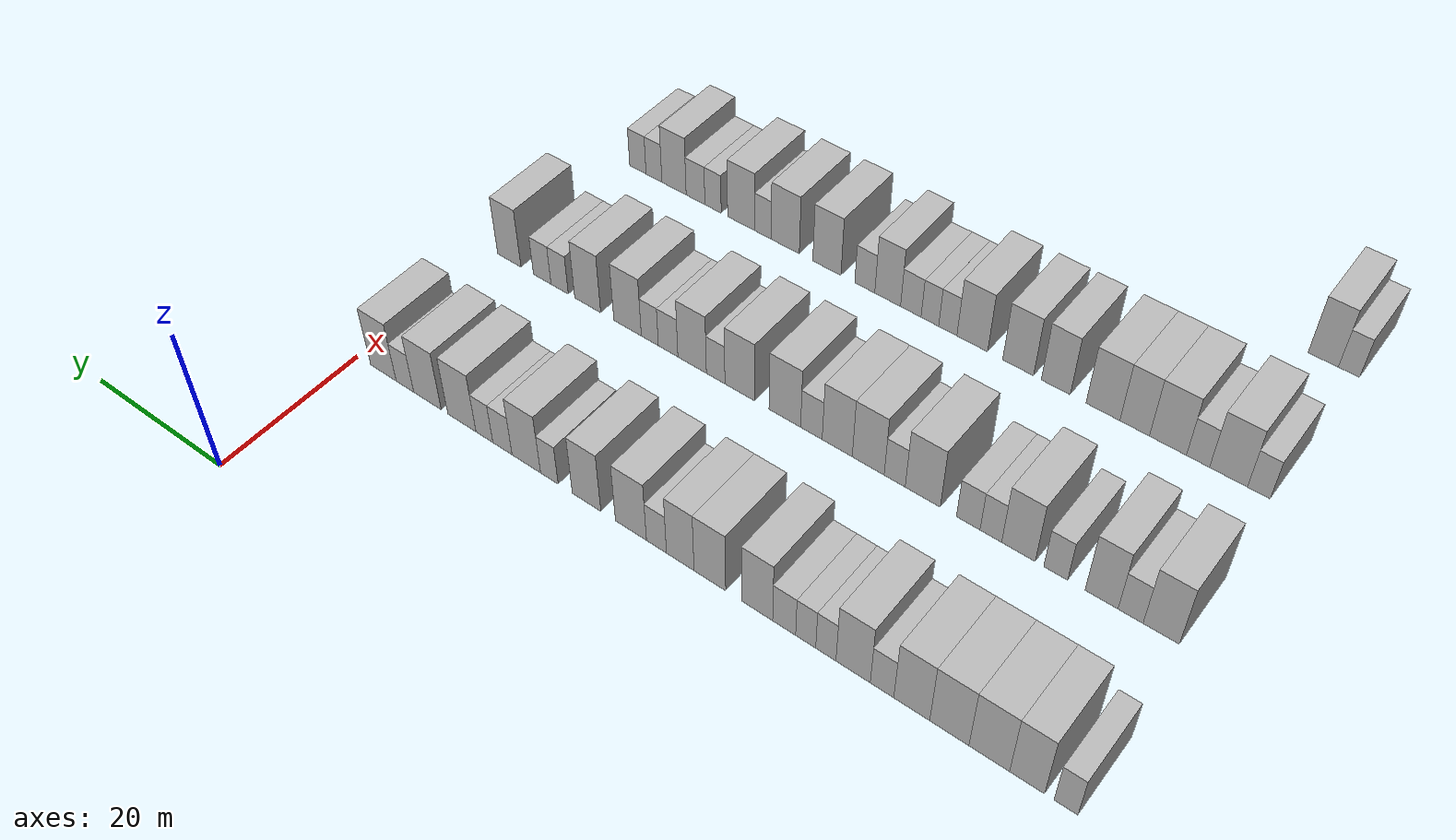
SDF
<sdf version="1.6">
 <world name="default">
  <model name="building_72">
   <static>1</static>
   <pose>25.0000 -91.9100 0 0.000000 0.000000 0.000000</pose>
   <link name="link">
    <pose>0 0 3.00 0 0 0</pose>
    <collision name="collision"><geometry><box><size>10.0000 2.4813 6.0000</size></box></geometry></collision>
    <visual name="visual">
     <cast_shadows>0</cast_shadows>
     <geometry><box><size>10.0000 2.4813 6.0000</size></box></geometry>
     <material>
      <script>
       <uri>model://HANNAS_wall/materials/scripts</uri>
       <uri>model://HANNAS_wall/materials/textures</uri>
       <name>vrc/HANNAS_wall</name>
      </script>
     </material>
    </visual>
   </link>
  </model>
  <model name="building_73">
   <static>1</static>
   <pose>25.0000 -87.8079 0 0.000000 0.000000 0.000000</pose>
   <link name="link">
    <pose>0 0 4.50 0 0 0</pose>
    <collision name="collision"><geometry><box><size>10.0000 3.7227 9.0000</size></box></geometry></collision>
    <visual name="visual">
     <cast_shadows>0</cast_shadows>
     <geometry><box><size>10.0000 3.7227 9.0000</size></box></geometry>
     <material>
      <script>
       <uri>model://HANNAS_wall/materials/scripts</uri>
       <uri>model://HANNAS_wall/materials/textures</uri>
       <name>vrc/HANNAS_wall</name>
      </script>
     </material>
    </visual>
   </link>
  </model>
  <model name="building_74">
   <static>1</static>
   <pose>25.0000 -83.7369 0 0.000000 0.000000 0.000000</pose>
   <link name="link">
    <pose>0 0 4.50 0 0 0</pose>
    <collision name="collision"><geometry><box><size>10.0000 4.4193 9.0000</size></box></geometry></collision>
    <visual name="visual">
     <cast_shadows>0</cast_shadows>
     <geometry><box><size>10.0000 4.4193 9.0000</size></box></geometry>
     <material>
      <script>
       <uri>model://HANNAS_wall/materials/scripts</uri>
       <uri>model://HANNAS_wall/materials/textures</uri>
       <name>vrc/HANNAS_wall</name>
      </script>
     </material>
    </visual>
   </link>
  </model>
  <model name="building_75">
   <static>1</static>
   <pose>25.0000 -79.3423 0 0.000000 0.000000 0.000000</pose>
   <link name="link">
    <pose>0 0 4.50 0 0 0</pose>
    <collision name="collision"><geometry><box><size>10.0000 4.3701 9.0000</size></box></geometry></collision>
    <visual name="visual">
     <cast_shadows>0</cast_shadows>
     <geometry><box><size>10.0000 4.3701 9.0000</size></box></geometry>
     <material>
      <script>
       <uri>model://HANNAS_wall/materials/scripts</uri>
       <uri>model://HANNAS_wall/materials/textures</uri>
       <name>vrc/HANNAS_wall</name>
      </script>
     </material>
    </visual>
   </link>
  </model>
  <model name="building_76">
   <static>1</static>
   <pose>25.0000 -75.1145 0 0.000000 0.000000 0.000000</pose>
   <link name="link">
    <pose>0 0 4.50 0 0 0</pose>
    <collision name="collision"><geometry><box><size>10.0000 4.0855 9.0000</size></box></geometry></collision>
    <visual name="visual">
     <cast_shadows>0</cast_shadows>
     <geometry><box><size>10.0000 4.0855 9.0000</size></box></geometry>
     <material>
      <script>
       <uri>model://HANNAS_wall/materials/scripts</uri>
       <uri>model://HANNAS_wall/materials/textures</uri>
       <name>vrc/HANNAS_wall</name>
      </script>
     </material>
    </visual>
   </link>
  </model>
  <model name="building_77">
   <static>1</static>
   <pose>25.0000 -71.7145 0 0.000000 0.000000 0.000000</pose>
   <link name="link">
    <pose>0 0 3.00 0 0 0</pose>
    <collision name="collision"><geometry><box><size>10.0000 2.7143 6.0000</size></box></geometry></collision>
    <visual name="visual">
     <cast_shadows>0</cast_shadows>
     <geometry><box><size>10.0000 2.7143 6.0000</size></box></geometry>
     <material>
      <script>
       <uri>model://HANNAS_wall/materials/scripts</uri>
       <uri>model://HANNAS_wall/materials/textures</uri>
       <name>vrc/HANNAS_wall</name>
      </script>
     </material>
    </visual>
   </link>
  </model>
  <model name="building_78">
   <static>1</static>
   <pose>25.0000 -68.3395 0 0.000000 0.000000 0.000000</pose>
   <link name="link">
    <pose>0 0 4.50 0 0 0</pose>
    <collision name="collision"><geometry><box><size>10.0000 4.0358 9.0000</size></box></geometry></collision>
    <visual name="visual">
     <cast_shadows>0</cast_shadows>
     <geometry><box><size>10.0000 4.0358 9.0000</size></box></geometry>
     <material>
      <script>
       <uri>model://HANNAS_wall/materials/scripts</uri>
       <uri>model://HANNAS_wall/materials/textures</uri>
       <name>vrc/HANNAS_wall</name>
      </script>
     </material>
    </visual>
   </link>
  </model>
  <model name="building_79">
   <static>1</static>
   <pose>25.0000 -65.1143 0 0.000000 0.000000 0.000000</pose>
   <link name="link">
    <pose>0 0 3.00 0 0 0</pose>
    <collision name="collision"><geometry><box><size>10.0000 2.4146 6.0000</size></box></geometry></collision>
    <visual name="visual">
     <cast_shadows>0</cast_shadows>
     <geometry><box><size>10.0000 2.4146 6.0000</size></box></geometry>
     <material>
      <script>
       <uri>model://HANNAS_wall/materials/scripts</uri>
       <uri>model://HANNAS_wall/materials/textures</uri>
       <name>vrc/HANNAS_wall</name>
      </script>
     </material>
    </visual>
   </link>
  </model>
  <model name="building_80">
   <static>1</static>
   <pose>25.0000 -62.6919 0 0.000000 0.000000 0.000000</pose>
   <link name="link">
    <pose>0 0 3.00 0 0 0</pose>
    <collision name="collision"><geometry><box><size>10.0000 2.4302 6.0000</size></box></geometry></collision>
    <visual name="visual">
     <cast_shadows>0</cast_shadows>
     <geometry><box><size>10.0000 2.4302 6.0000</size></box></geometry>
     <material>
      <script>
       <uri>model://HANNAS_wall/materials/scripts</uri>
       <uri>model://HANNAS_wall/materials/textures</uri>
       <name>vrc/HANNAS_wall</name>
      </script>
     </material>
    </visual>
   </link>
  </model>
  <model name="building_81">
   <static>1</static>
   <pose>25.0000 -60.0693 0 0.000000 0.000000 0.000000</pose>
   <link name="link">
    <pose>0 0 3.00 0 0 0</pose>
    <collision name="collision"><geometry><box><size>10.0000 2.8149 6.0000</size></box></geometry></collision>
    <visual name="visual">
     <cast_shadows>0</cast_shadows>
     <geometry><box><size>10.0000 2.8149 6.0000</size></box></geometry>
     <material>
      <script>
       <uri>model://HANNAS_wall/materials/scripts</uri>
       <uri>model://HANNAS_wall/materials/textures</uri>
       <name>vrc/HANNAS_wall</name>
      </script>
     </material>
    </visual>
   </link>
  </model>
  <model name="building_82">
   <static>1</static>
   <pose>25.0000 -56.7235 0 0.000000 0.000000 0.000000</pose>
   <link name="link">
    <pose>0 0 4.50 0 0 0</pose>
    <collision name="collision"><geometry><box><size>10.0000 3.8769 9.0000</size></box></geometry></collision>
    <visual name="visual">
     <cast_shadows>0</cast_shadows>
     <geometry><box><size>10.0000 3.8769 9.0000</size></box></geometry>
     <material>
      <script>
       <uri>model://HANNAS_wall/materials/scripts</uri>
       <uri>model://HANNAS_wall/materials/textures</uri>
       <name>vrc/HANNAS_wall</name>
      </script>
     </material>
    </visual>
   </link>
  </model>
  <model name="building_83">
   <static>1</static>
   <pose>25.0000 -50.7544 0 0.000000 0.000000 0.000000</pose>
   <link name="link">
    <pose>0 0 4.50 0 0 0</pose>
    <collision name="collision"><geometry><box><size>10.0000 4.0613 9.0000</size></box></geometry></collision>
    <visual name="visual">
     <cast_shadows>0</cast_shadows>
     <geometry><box><size>10.0000 4.0613 9.0000</size></box></geometry>
     <material>
      <script>
       <uri>model://HANNAS_wall/materials/scripts</uri>
       <uri>model://HANNAS_wall/materials/textures</uri>
       <name>vrc/HANNAS_wall</name>
      </script>
     </material>
    </visual>
   </link>
  </model>
  <model name="building_84">
   <static>1</static>
   <pose>25.0000 -46.9219 0 0.000000 0.000000 0.000000</pose>
   <link name="link">
    <pose>0 0 4.50 0 0 0</pose>
    <collision name="collision"><geometry><box><size>10.0000 3.6037 9.0000</size></box></geometry></collision>
    <visual name="visual">
     <cast_shadows>0</cast_shadows>
     <geometry><box><size>10.0000 3.6037 9.0000</size></box></geometry>
     <material>
      <script>
       <uri>model://HANNAS_wall/materials/scripts</uri>
       <uri>model://HANNAS_wall/materials/textures</uri>
       <name>vrc/HANNAS_wall</name>
      </script>
     </material>
    </visual>
   </link>
  </model>
  <model name="building_85">
   <static>1</static>
   <pose>25.0000 -43.7924 0 0.000000 0.000000 0.000000</pose>
   <link name="link">
    <pose>0 0 3.00 0 0 0</pose>
    <collision name="collision"><geometry><box><size>10.0000 2.6552 6.0000</size></box></geometry></collision>
    <visual name="visual">
     <cast_shadows>0</cast_shadows>
     <geometry><box><size>10.0000 2.6552 6.0000</size></box></geometry>
     <material>
      <script>
       <uri>model://HANNAS_wall/materials/scripts</uri>
       <uri>model://HANNAS_wall/materials/textures</uri>
       <name>vrc/HANNAS_wall</name>
      </script>
     </material>
    </visual>
   </link>
  </model>
  <model name="building_86">
   <static>1</static>
   <pose>25.0000 -40.3760 0 0.000000 0.000000 0.000000</pose>
   <link name="link">
    <pose>0 0 4.50 0 0 0</pose>
    <collision name="collision"><geometry><box><size>10.0000 4.1776 9.0000</size></box></geometry></collision>
    <visual name="visual">
     <cast_shadows>0</cast_shadows>
     <geometry><box><size>10.0000 4.1776 9.0000</size></box></geometry>
     <material>
      <script>
       <uri>model://HANNAS_wall/materials/scripts</uri>
       <uri>model://HANNAS_wall/materials/textures</uri>
       <name>vrc/HANNAS_wall</name>
      </script>
     </material>
    </visual>
   </link>
  </model>
  <model name="building_87">
   <static>1</static>
   <pose>25.0000 -34.3118 0 0.000000 0.000000 0.000000</pose>
   <link name="link">
    <pose>0 0 4.50 0 0 0</pose>
    <collision name="collision"><geometry><box><size>10.0000 3.9508 9.0000</size></box></geometry></collision>
    <visual name="visual">
     <cast_shadows>0</cast_shadows>
     <geometry><box><size>10.0000 3.9508 9.0000</size></box></geometry>
     <material>
      <script>
       <uri>model://HANNAS_wall/materials/scripts</uri>
       <uri>model://HANNAS_wall/materials/textures</uri>
       <name>vrc/HANNAS_wall</name>
      </script>
     </material>
    </visual>
   </link>
  </model>
  <model name="building_88">
   <static>1</static>
   <pose>25.0000 -29.0857 0 0.000000 0.000000 0.000000</pose>
   <link name="link">
    <pose>0 0 3.00 0 0 0</pose>
    <collision name="collision"><geometry><box><size>10.0000 2.5012 6.0000</size></box></geometry></collision>
    <visual name="visual">
     <cast_shadows>0</cast_shadows>
     <geometry><box><size>10.0000 2.5012 6.0000</size></box></geometry>
     <material>
      <script>
       <uri>model://HANNAS_wall/materials/scripts</uri>
       <uri>model://HANNAS_wall/materials/textures</uri>
       <name>vrc/HANNAS_wall</name>
      </script>
     </material>
    </visual>
   </link>
  </model>
  <model name="building_89">
   <static>1</static>
   <pose>25.0000 -25.7816 0 0.000000 0.000000 0.000000</pose>
   <link name="link">
    <pose>0 0 4.50 0 0 0</pose>
    <collision name="collision"><geometry><box><size>10.0000 4.1071 9.0000</size></box></geometry></collision>
    <visual name="visual">
     <cast_shadows>0</cast_shadows>
     <geometry><box><size>10.0000 4.1071 9.0000</size></box></geometry>
     <material>
      <script>
       <uri>model://HANNAS_wall/materials/scripts</uri>
       <uri>model://HANNAS_wall/materials/textures</uri>
       <name>vrc/HANNAS_wall</name>
      </script>
     </material>
    </visual>
   </link>
  </model>
  <model name="building_90">
   <static>1</static>
   <pose>25.0000 -22.3142 0 0.000000 0.000000 0.000000</pose>
   <link name="link">
    <pose>0 0 3.00 0 0 0</pose>
    <collision name="collision"><geometry><box><size>10.0000 2.8277 6.0000</size></box></geometry></collision>
    <visual name="visual">
     <cast_shadows>0</cast_shadows>
     <geometry><box><size>10.0000 2.8277 6.0000</size></box></geometry>
     <material>
      <script>
       <uri>model://HANNAS_wall/materials/scripts</uri>
       <uri>model://HANNAS_wall/materials/textures</uri>
       <name>vrc/HANNAS_wall</name>
      </script>
     </material>
    </visual>
   </link>
  </model>
  <model name="building_91">
   <static>1</static>
   <pose>25.0000 -19.6521 0 0.000000 0.000000 0.000000</pose>
   <link name="link">
    <pose>0 0 3.00 0 0 0</pose>
    <collision name="collision"><geometry><box><size>10.0000 2.4966 6.0000</size></box></geometry></collision>
    <visual name="visual">
     <cast_shadows>0</cast_shadows>
     <geometry><box><size>10.0000 2.4966 6.0000</size></box></geometry>
     <material>
      <script>
       <uri>model://HANNAS_wall/materials/scripts</uri>
       <uri>model://HANNAS_wall/materials/textures</uri>
       <name>vrc/HANNAS_wall</name>
      </script>
     </material>
    </visual>
   </link>
  </model>
  <model name="building_92">
   <static>1</static>
   <pose>25.0000 -16.2829 0 0.000000 0.000000 0.000000</pose>
   <link name="link">
    <pose>0 0 4.50 0 0 0</pose>
    <collision name="collision"><geometry><box><size>10.0000 4.2417 9.0000</size></box></geometry></collision>
    <visual name="visual">
     <cast_shadows>0</cast_shadows>
     <geometry><box><size>10.0000 4.2417 9.0000</size></box></geometry>
     <material>
      <script>
       <uri>model://HANNAS_wall/materials/scripts</uri>
       <uri>model://HANNAS_wall/materials/textures</uri>
       <name>vrc/HANNAS_wall</name>
      </script>
     </material>
    </visual>
   </link>
  </model>
  <model name="building_93">
   <static>1</static>
   <pose>25.0000 -11.0403 0 0.000000 0.000000 0.000000</pose>
   <link name="link">
    <pose>0 0 4.50 0 0 0</pose>
    <collision name="collision"><geometry><box><size>10.0000 4.2434 9.0000</size></box></geometry></collision>
    <visual name="visual">
     <cast_shadows>0</cast_shadows>
     <geometry><box><size>10.0000 4.2434 9.0000</size></box></geometry>
     <material>
      <script>
       <uri>model://HANNAS_wall/materials/scripts</uri>
       <uri>model://HANNAS_wall/materials/textures</uri>
       <name>vrc/HANNAS_wall</name>
      </script>
     </material>
    </visual>
   </link>
  </model>
  <model name="building_94">
   <static>1</static>
   <pose>25.0000 -7.5427 0 0.000000 0.000000 0.000000</pose>
   <link name="link">
    <pose>0 0 3.00 0 0 0</pose>
    <collision name="collision"><geometry><box><size>10.0000 2.7518 6.0000</size></box></geometry></collision>
    <visual name="visual">
     <cast_shadows>0</cast_shadows>
     <geometry><box><size>10.0000 2.7518 6.0000</size></box></geometry>
     <material>
      <script>
       <uri>model://HANNAS_wall/materials/scripts</uri>
       <uri>model://HANNAS_wall/materials/textures</uri>
       <name>vrc/HANNAS_wall</name>
      </script>
     </material>
    </visual>
   </link>
  </model>
  <model name="building_95">
   <static>1</static>
   <pose>25.0000 -4.1425 0 0.000000 0.000000 0.000000</pose>
   <link name="link">
    <pose>0 0 4.50 0 0 0</pose>
    <collision name="collision"><geometry><box><size>10.0000 4.0486 9.0000</size></box></geometry></collision>
    <visual name="visual">
     <cast_shadows>0</cast_shadows>
     <geometry><box><size>10.0000 4.0486 9.0000</size></box></geometry>
     <material>
      <script>
       <uri>model://HANNAS_wall/materials/scripts</uri>
       <uri>model://HANNAS_wall/materials/textures</uri>
       <name>vrc/HANNAS_wall</name>
      </script>
     </material>
    </visual>
   </link>
  </model>
  <model name="building_259">
   <static>1</static>
   <pose>47.0000 -89.8505 0 0.000000 0.000000 0.000000</pose>
   <link name="link">
    <pose>0 0 4.50 0 0 0</pose>
    <collision name="collision"><geometry><box><size>10.0000 3.9949 9.0000</size></box></geometry></collision>
    <visual name="visual">
     <cast_shadows>0</cast_shadows>
     <geometry><box><size>10.0000 3.9949 9.0000</size></box></geometry>
     <material>
      <script>
       <uri>model://HANNAS_wall/materials/scripts</uri>
       <uri>model://HANNAS_wall/materials/textures</uri>
       <name>vrc/HANNAS_wall</name>
      </script>
     </material>
    </visual>
   </link>
  </model>
  <model name="building_260">
   <static>1</static>
   <pose>47.0000 -86.4581 0 0.000000 0.000000 0.000000</pose>
   <link name="link">
    <pose>0 0 3.00 0 0 0</pose>
    <collision name="collision"><geometry><box><size>10.0000 2.7898 6.0000</size></box></geometry></collision>
    <visual name="visual">
     <cast_shadows>0</cast_shadows>
     <geometry><box><size>10.0000 2.7898 6.0000</size></box></geometry>
     <material>
      <script>
       <uri>model://HANNAS_wall/materials/scripts</uri>
       <uri>model://HANNAS_wall/materials/textures</uri>
       <name>vrc/HANNAS_wall</name>
      </script>
     </material>
    </visual>
   </link>
  </model>
  <model name="building_261">
   <static>1</static>
   <pose>47.0000 -83.1957 0 0.000000 0.000000 0.000000</pose>
   <link name="link">
    <pose>0 0 4.50 0 0 0</pose>
    <collision name="collision"><geometry><box><size>10.0000 3.7350 9.0000</size></box></geometry></collision>
    <visual name="visual">
     <cast_shadows>0</cast_shadows>
     <geometry><box><size>10.0000 3.7350 9.0000</size></box></geometry>
     <material>
      <script>
       <uri>model://HANNAS_wall/materials/scripts</uri>
       <uri>model://HANNAS_wall/materials/textures</uri>
       <name>vrc/HANNAS_wall</name>
      </script>
     </material>
    </visual>
   </link>
  </model>
  <model name="building_262">
   <static>1</static>
   <pose>47.0000 -77.9371 0 0.000000 0.000000 0.000000</pose>
   <link name="link">
    <pose>0 0 3.00 0 0 0</pose>
    <collision name="collision"><geometry><box><size>10.0000 2.7823 6.0000</size></box></geometry></collision>
    <visual name="visual">
     <cast_shadows>0</cast_shadows>
     <geometry><box><size>10.0000 2.7823 6.0000</size></box></geometry>
     <material>
      <script>
       <uri>model://HANNAS_wall/materials/scripts</uri>
       <uri>model://HANNAS_wall/materials/textures</uri>
       <name>vrc/HANNAS_wall</name>
      </script>
     </material>
    </visual>
   </link>
  </model>
  <model name="building_263">
   <static>1</static>
   <pose>47.0000 -73.5469 0 0.000000 0.000000 0.000000</pose>
   <link name="link">
    <pose>0 0 4.50 0 0 0</pose>
    <collision name="collision"><geometry><box><size>10.0000 3.9981 9.0000</size></box></geometry></collision>
    <visual name="visual">
     <cast_shadows>0</cast_shadows>
     <geometry><box><size>10.0000 3.9981 9.0000</size></box></geometry>
     <material>
      <script>
       <uri>model://HANNAS_wall/materials/scripts</uri>
       <uri>model://HANNAS_wall/materials/textures</uri>
       <name>vrc/HANNAS_wall</name>
      </script>
     </material>
    </visual>
   </link>
  </model>
  <model name="building_264">
   <static>1</static>
   <pose>47.0000 -70.2468 0 0.000000 0.000000 0.000000</pose>
   <link name="link">
    <pose>0 0 3.00 0 0 0</pose>
    <collision name="collision"><geometry><box><size>10.0000 2.6020 6.0000</size></box></geometry></collision>
    <visual name="visual">
     <cast_shadows>0</cast_shadows>
     <geometry><box><size>10.0000 2.6020 6.0000</size></box></geometry>
     <material>
      <script>
       <uri>model://HANNAS_wall/materials/scripts</uri>
       <uri>model://HANNAS_wall/materials/textures</uri>
       <name>vrc/HANNAS_wall</name>
      </script>
     </material>
    </visual>
   </link>
  </model>
  <model name="building_265">
   <static>1</static>
   <pose>47.0000 -67.5067 0 0.000000 0.000000 0.000000</pose>
   <link name="link">
    <pose>0 0 3.00 0 0 0</pose>
    <collision name="collision"><geometry><box><size>10.0000 2.8781 6.0000</size></box></geometry></collision>
    <visual name="visual">
     <cast_shadows>0</cast_shadows>
     <geometry><box><size>10.0000 2.8781 6.0000</size></box></geometry>
     <material>
      <script>
       <uri>model://HANNAS_wall/materials/scripts</uri>
       <uri>model://HANNAS_wall/materials/textures</uri>
       <name>vrc/HANNAS_wall</name>
      </script>
     </material>
    </visual>
   </link>
  </model>
  <model name="building_266">
   <static>1</static>
   <pose>47.0000 -61.8612 0 0.000000 0.000000 0.000000</pose>
   <link name="link">
    <pose>0 0 4.50 0 0 0</pose>
    <collision name="collision"><geometry><box><size>10.0000 4.4130 9.0000</size></box></geometry></collision>
    <visual name="visual">
     <cast_shadows>0</cast_shadows>
     <geometry><box><size>10.0000 4.4130 9.0000</size></box></geometry>
     <material>
      <script>
       <uri>model://HANNAS_wall/materials/scripts</uri>
       <uri>model://HANNAS_wall/materials/textures</uri>
       <name>vrc/HANNAS_wall</name>
      </script>
     </material>
    </visual>
   </link>
  </model>
  <model name="building_267">
   <static>1</static>
   <pose>47.0000 -58.3132 0 0.000000 0.000000 0.000000</pose>
   <link name="link">
    <pose>0 0 3.00 0 0 0</pose>
    <collision name="collision"><geometry><box><size>10.0000 2.6830 6.0000</size></box></geometry></collision>
    <visual name="visual">
     <cast_shadows>0</cast_shadows>
     <geometry><box><size>10.0000 2.6830 6.0000</size></box></geometry>
     <material>
      <script>
       <uri>model://HANNAS_wall/materials/scripts</uri>
       <uri>model://HANNAS_wall/materials/textures</uri>
       <name>vrc/HANNAS_wall</name>
      </script>
     </material>
    </visual>
   </link>
  </model>
  <model name="building_268">
   <static>1</static>
   <pose>47.0000 -54.9056 0 0.000000 0.000000 0.000000</pose>
   <link name="link">
    <pose>0 0 4.50 0 0 0</pose>
    <collision name="collision"><geometry><box><size>10.0000 4.1321 9.0000</size></box></geometry></collision>
    <visual name="visual">
     <cast_shadows>0</cast_shadows>
     <geometry><box><size>10.0000 4.1321 9.0000</size></box></geometry>
     <material>
      <script>
       <uri>model://HANNAS_wall/materials/scripts</uri>
       <uri>model://HANNAS_wall/materials/textures</uri>
       <name>vrc/HANNAS_wall</name>
      </script>
     </material>
    </visual>
   </link>
  </model>
  <model name="building_269">
   <static>1</static>
   <pose>47.0000 -50.8537 0 0.000000 0.000000 0.000000</pose>
   <link name="link">
    <pose>0 0 4.50 0 0 0</pose>
    <collision name="collision"><geometry><box><size>10.0000 3.9716 9.0000</size></box></geometry></collision>
    <visual name="visual">
     <cast_shadows>0</cast_shadows>
     <geometry><box><size>10.0000 3.9716 9.0000</size></box></geometry>
     <material>
      <script>
       <uri>model://HANNAS_wall/materials/scripts</uri>
       <uri>model://HANNAS_wall/materials/textures</uri>
       <name>vrc/HANNAS_wall</name>
      </script>
     </material>
    </visual>
   </link>
  </model>
  <model name="building_270">
   <static>1</static>
   <pose>47.0000 -47.4224 0 0.000000 0.000000 0.000000</pose>
   <link name="link">
    <pose>0 0 3.00 0 0 0</pose>
    <collision name="collision"><geometry><box><size>10.0000 2.8911 6.0000</size></box></geometry></collision>
    <visual name="visual">
     <cast_shadows>0</cast_shadows>
     <geometry><box><size>10.0000 2.8911 6.0000</size></box></geometry>
     <material>
      <script>
       <uri>model://HANNAS_wall/materials/scripts</uri>
       <uri>model://HANNAS_wall/materials/textures</uri>
       <name>vrc/HANNAS_wall</name>
      </script>
     </material>
    </visual>
   </link>
  </model>
  <model name="building_271">
   <static>1</static>
   <pose>47.0000 -43.8256 0 0.000000 0.000000 0.000000</pose>
   <link name="link">
    <pose>0 0 4.50 0 0 0</pose>
    <collision name="collision"><geometry><box><size>10.0000 4.3025 9.0000</size></box></geometry></collision>
    <visual name="visual">
     <cast_shadows>0</cast_shadows>
     <geometry><box><size>10.0000 4.3025 9.0000</size></box></geometry>
     <material>
      <script>
       <uri>model://HANNAS_wall/materials/scripts</uri>
       <uri>model://HANNAS_wall/materials/textures</uri>
       <name>vrc/HANNAS_wall</name>
      </script>
     </material>
    </visual>
   </link>
  </model>
  <model name="building_272">
   <static>1</static>
   <pose>47.0000 -37.6017 0 0.000000 0.000000 0.000000</pose>
   <link name="link">
    <pose>0 0 4.50 0 0 0</pose>
    <collision name="collision"><geometry><box><size>10.0000 4.1455 9.0000</size></box></geometry></collision>
    <visual name="visual">
     <cast_shadows>0</cast_shadows>
     <geometry><box><size>10.0000 4.1455 9.0000</size></box></geometry>
     <material>
      <script>
       <uri>model://HANNAS_wall/materials/scripts</uri>
       <uri>model://HANNAS_wall/materials/textures</uri>
       <name>vrc/HANNAS_wall</name>
      </script>
     </material>
    </visual>
   </link>
  </model>
  <model name="building_273">
   <static>1</static>
   <pose>47.0000 -34.2141 0 0.000000 0.000000 0.000000</pose>
   <link name="link">
    <pose>0 0 3.00 0 0 0</pose>
    <collision name="collision"><geometry><box><size>10.0000 2.6296 6.0000</size></box></geometry></collision>
    <visual name="visual">
     <cast_shadows>0</cast_shadows>
     <geometry><box><size>10.0000 2.6296 6.0000</size></box></geometry>
     <material>
      <script>
       <uri>model://HANNAS_wall/materials/scripts</uri>
       <uri>model://HANNAS_wall/materials/textures</uri>
       <name>vrc/HANNAS_wall</name>
      </script>
     </material>
    </visual>
   </link>
  </model>
  <model name="building_274">
   <static>1</static>
   <pose>47.0000 -30.8430 0 0.000000 0.000000 0.000000</pose>
   <link name="link">
    <pose>0 0 4.50 0 0 0</pose>
    <collision name="collision"><geometry><box><size>10.0000 4.1127 9.0000</size></box></geometry></collision>
    <visual name="visual">
     <cast_shadows>0</cast_shadows>
     <geometry><box><size>10.0000 4.1127 9.0000</size></box></geometry>
     <material>
      <script>
       <uri>model://HANNAS_wall/materials/scripts</uri>
       <uri>model://HANNAS_wall/materials/textures</uri>
       <name>vrc/HANNAS_wall</name>
      </script>
     </material>
    </visual>
   </link>
  </model>
  <model name="building_275">
   <static>1</static>
   <pose>47.0000 -27.3571 0 0.000000 0.000000 0.000000</pose>
   <link name="link">
    <pose>0 0 3.00 0 0 0</pose>
    <collision name="collision"><geometry><box><size>10.0000 2.8590 6.0000</size></box></geometry></collision>
    <visual name="visual">
     <cast_shadows>0</cast_shadows>
     <geometry><box><size>10.0000 2.8590 6.0000</size></box></geometry>
     <material>
      <script>
       <uri>model://HANNAS_wall/materials/scripts</uri>
       <uri>model://HANNAS_wall/materials/textures</uri>
       <name>vrc/HANNAS_wall</name>
      </script>
     </material>
    </visual>
   </link>
  </model>
  <model name="building_276">
   <static>1</static>
   <pose>47.0000 -24.6711 0 0.000000 0.000000 0.000000</pose>
   <link name="link">
    <pose>0 0 3.00 0 0 0</pose>
    <collision name="collision"><geometry><box><size>10.0000 2.5130 6.0000</size></box></geometry></collision>
    <visual name="visual">
     <cast_shadows>0</cast_shadows>
     <geometry><box><size>10.0000 2.5130 6.0000</size></box></geometry>
     <material>
      <script>
       <uri>model://HANNAS_wall/materials/scripts</uri>
       <uri>model://HANNAS_wall/materials/textures</uri>
       <name>vrc/HANNAS_wall</name>
      </script>
     </material>
    </visual>
   </link>
  </model>
  <model name="building_277">
   <static>1</static>
   <pose>47.0000 -21.3496 0 0.000000 0.000000 0.000000</pose>
   <link name="link">
    <pose>0 0 4.50 0 0 0</pose>
    <collision name="collision"><geometry><box><size>10.0000 4.1299 9.0000</size></box></geometry></collision>
    <visual name="visual">
     <cast_shadows>0</cast_shadows>
     <geometry><box><size>10.0000 4.1299 9.0000</size></box></geometry>
     <material>
      <script>
       <uri>model://HANNAS_wall/materials/scripts</uri>
       <uri>model://HANNAS_wall/materials/textures</uri>
       <name>vrc/HANNAS_wall</name>
      </script>
     </material>
    </visual>
   </link>
  </model>
  <model name="building_278">
   <static>1</static>
   <pose>47.0000 -15.2818 0 0.000000 0.000000 0.000000</pose>
   <link name="link">
    <pose>0 0 4.50 0 0 0</pose>
    <collision name="collision"><geometry><box><size>10.0000 4.0058 9.0000</size></box></geometry></collision>
    <visual name="visual">
     <cast_shadows>0</cast_shadows>
     <geometry><box><size>10.0000 4.0058 9.0000</size></box></geometry>
     <material>
      <script>
       <uri>model://HANNAS_wall/materials/scripts</uri>
       <uri>model://HANNAS_wall/materials/textures</uri>
       <name>vrc/HANNAS_wall</name>
      </script>
     </material>
    </visual>
   </link>
  </model>
  <model name="building_279">
   <static>1</static>
   <pose>47.0000 -10.9223 0 0.000000 0.000000 0.000000</pose>
   <link name="link">
    <pose>0 0 3.00 0 0 0</pose>
    <collision name="collision"><geometry><box><size>10.0000 2.7131 6.0000</size></box></geometry></collision>
    <visual name="visual">
     <cast_shadows>0</cast_shadows>
     <geometry><box><size>10.0000 2.7131 6.0000</size></box></geometry>
     <material>
      <script>
       <uri>model://HANNAS_wall/materials/scripts</uri>
       <uri>model://HANNAS_wall/materials/textures</uri>
       <name>vrc/HANNAS_wall</name>
      </script>
     </material>
    </visual>
   </link>
  </model>
  <model name="building_280">
   <static>1</static>
   <pose>47.0000 -8.1749 0 0.000000 0.000000 0.000000</pose>
   <link name="link">
    <pose>0 0 3.00 0 0 0</pose>
    <collision name="collision"><geometry><box><size>10.0000 2.7819 6.0000</size></box></geometry></collision>
    <visual name="visual">
     <cast_shadows>0</cast_shadows>
     <geometry><box><size>10.0000 2.7819 6.0000</size></box></geometry>
     <material>
      <script>
       <uri>model://HANNAS_wall/materials/scripts</uri>
       <uri>model://HANNAS_wall/materials/textures</uri>
       <name>vrc/HANNAS_wall</name>
      </script>
     </material>
    </visual>
   </link>
  </model>
  <model name="building_281">
   <static>1</static>
   <pose>47.0000 -2.8957 0 0.000000 0.000000 0.000000</pose>
   <link name="link">
    <pose>0 0 4.50 0 0 0</pose>
    <collision name="collision"><geometry><box><size>10.0000 3.7765 9.0000</size></box></geometry></collision>
    <visual name="visual">
     <cast_shadows>0</cast_shadows>
     <geometry><box><size>10.0000 3.7765 9.0000</size></box></geometry>
     <material>
      <script>
       <uri>model://HANNAS_wall/materials/scripts</uri>
       <uri>model://HANNAS_wall/materials/textures</uri>
       <name>vrc/HANNAS_wall</name>
      </script>
     </material>
    </visual>
   </link>
  </model>
  <model name="building_449">
   <static>1</static>
   <pose>69.0000 -89.6305 0 0.000000 0.000000 0.000000</pose>
   <link name="link">
    <pose>0 0 3.00 0 0 0</pose>
    <collision name="collision"><geometry><box><size>10.0000 2.6158 6.0000</size></box></geometry></collision>
    <visual name="visual">
     <cast_shadows>0</cast_shadows>
     <geometry><box><size>10.0000 2.6158 6.0000</size></box></geometry>
     <material>
      <script>
       <uri>model://HANNAS_wall/materials/scripts</uri>
       <uri>model://HANNAS_wall/materials/textures</uri>
       <name>vrc/HANNAS_wall</name>
      </script>
     </material>
    </visual>
   </link>
  </model>
  <model name="building_450">
   <static>1</static>
   <pose>69.0000 -86.1173 0 0.000000 0.000000 0.000000</pose>
   <link name="link">
    <pose>0 0 4.50 0 0 0</pose>
    <collision name="collision"><geometry><box><size>10.0000 4.4107 9.0000</size></box></geometry></collision>
    <visual name="visual">
     <cast_shadows>0</cast_shadows>
     <geometry><box><size>10.0000 4.4107 9.0000</size></box></geometry>
     <material>
      <script>
       <uri>model://HANNAS_wall/materials/scripts</uri>
       <uri>model://HANNAS_wall/materials/textures</uri>
       <name>vrc/HANNAS_wall</name>
      </script>
     </material>
    </visual>
   </link>
  </model>
  <model name="building_451">
   <static>1</static>
   <pose>69.0000 -82.5428 0 0.000000 0.000000 0.000000</pose>
   <link name="link">
    <pose>0 0 3.00 0 0 0</pose>
    <collision name="collision"><geometry><box><size>10.0000 2.7382 6.0000</size></box></geometry></collision>
    <visual name="visual">
     <cast_shadows>0</cast_shadows>
     <geometry><box><size>10.0000 2.7382 6.0000</size></box></geometry>
     <material>
      <script>
       <uri>model://HANNAS_wall/materials/scripts</uri>
       <uri>model://HANNAS_wall/materials/textures</uri>
       <name>vrc/HANNAS_wall</name>
      </script>
     </material>
    </visual>
   </link>
  </model>
  <model name="building_452">
   <static>1</static>
   <pose>69.0000 -78.9491 0 0.000000 0.000000 0.000000</pose>
   <link name="link">
    <pose>0 0 4.50 0 0 0</pose>
    <collision name="collision"><geometry><box><size>10.0000 4.4492 9.0000</size></box></geometry></collision>
    <visual name="visual">
     <cast_shadows>0</cast_shadows>
     <geometry><box><size>10.0000 4.4492 9.0000</size></box></geometry>
     <material>
      <script>
       <uri>model://HANNAS_wall/materials/scripts</uri>
       <uri>model://HANNAS_wall/materials/textures</uri>
       <name>vrc/HANNAS_wall</name>
      </script>
     </material>
    </visual>
   </link>
  </model>
  <model name="building_453">
   <static>1</static>
   <pose>69.0000 -74.9120 0 0.000000 0.000000 0.000000</pose>
   <link name="link">
    <pose>0 0 4.50 0 0 0</pose>
    <collision name="collision"><geometry><box><size>10.0000 3.6250 9.0000</size></box></geometry></collision>
    <visual name="visual">
     <cast_shadows>0</cast_shadows>
     <geometry><box><size>10.0000 3.6250 9.0000</size></box></geometry>
     <material>
      <script>
       <uri>model://HANNAS_wall/materials/scripts</uri>
       <uri>model://HANNAS_wall/materials/textures</uri>
       <name>vrc/HANNAS_wall</name>
      </script>
     </material>
    </visual>
   </link>
  </model>
  <model name="building_454">
   <static>1</static>
   <pose>69.0000 -70.9981 0 0.000000 0.000000 0.000000</pose>
   <link name="link">
    <pose>0 0 4.50 0 0 0</pose>
    <collision name="collision"><geometry><box><size>10.0000 4.2029 9.0000</size></box></geometry></collision>
    <visual name="visual">
     <cast_shadows>0</cast_shadows>
     <geometry><box><size>10.0000 4.2029 9.0000</size></box></geometry>
     <material>
      <script>
       <uri>model://HANNAS_wall/materials/scripts</uri>
       <uri>model://HANNAS_wall/materials/textures</uri>
       <name>vrc/HANNAS_wall</name>
      </script>
     </material>
    </visual>
   </link>
  </model>
  <model name="building_455">
   <static>1</static>
   <pose>69.0000 -65.0454 0 0.000000 0.000000 0.000000</pose>
   <link name="link">
    <pose>0 0 4.50 0 0 0</pose>
    <collision name="collision"><geometry><box><size>10.0000 3.7025 9.0000</size></box></geometry></collision>
    <visual name="visual">
     <cast_shadows>0</cast_shadows>
     <geometry><box><size>10.0000 3.7025 9.0000</size></box></geometry>
     <material>
      <script>
       <uri>model://HANNAS_wall/materials/scripts</uri>
       <uri>model://HANNAS_wall/materials/textures</uri>
       <name>vrc/HANNAS_wall</name>
      </script>
     </material>
    </visual>
   </link>
  </model>
  <model name="building_456">
   <static>1</static>
   <pose>69.0000 -60.1752 0 0.000000 0.000000 0.000000</pose>
   <link name="link">
    <pose>0 0 4.50 0 0 0</pose>
    <collision name="collision"><geometry><box><size>10.0000 4.0378 9.0000</size></box></geometry></collision>
    <visual name="visual">
     <cast_shadows>0</cast_shadows>
     <geometry><box><size>10.0000 4.0378 9.0000</size></box></geometry>
     <material>
      <script>
       <uri>model://HANNAS_wall/materials/scripts</uri>
       <uri>model://HANNAS_wall/materials/textures</uri>
       <name>vrc/HANNAS_wall</name>
      </script>
     </material>
    </visual>
   </link>
  </model>
  <model name="building_457">
   <static>1</static>
   <pose>69.0000 -54.0944 0 0.000000 0.000000 0.000000</pose>
   <link name="link">
    <pose>0 0 4.50 0 0 0</pose>
    <collision name="collision"><geometry><box><size>10.0000 4.1237 9.0000</size></box></geometry></collision>
    <visual name="visual">
     <cast_shadows>0</cast_shadows>
     <geometry><box><size>10.0000 4.1237 9.0000</size></box></geometry>
     <material>
      <script>
       <uri>model://HANNAS_wall/materials/scripts</uri>
       <uri>model://HANNAS_wall/materials/textures</uri>
       <name>vrc/HANNAS_wall</name>
      </script>
     </material>
    </visual>
   </link>
  </model>
  <model name="building_458">
   <static>1</static>
   <pose>69.0000 -50.7899 0 0.000000 0.000000 0.000000</pose>
   <link name="link">
    <pose>0 0 3.00 0 0 0</pose>
    <collision name="collision"><geometry><box><size>10.0000 2.4854 6.0000</size></box></geometry></collision>
    <visual name="visual">
     <cast_shadows>0</cast_shadows>
     <geometry><box><size>10.0000 2.4854 6.0000</size></box></geometry>
     <material>
      <script>
       <uri>model://HANNAS_wall/materials/scripts</uri>
       <uri>model://HANNAS_wall/materials/textures</uri>
       <name>vrc/HANNAS_wall</name>
      </script>
     </material>
    </visual>
   </link>
  </model>
  <model name="building_459">
   <static>1</static>
   <pose>69.0000 -48.3383 0 0.000000 0.000000 0.000000</pose>
   <link name="link">
    <pose>0 0 3.00 0 0 0</pose>
    <collision name="collision"><geometry><box><size>10.0000 2.4177 6.0000</size></box></geometry></collision>
    <visual name="visual">
     <cast_shadows>0</cast_shadows>
     <geometry><box><size>10.0000 2.4177 6.0000</size></box></geometry>
     <material>
      <script>
       <uri>model://HANNAS_wall/materials/scripts</uri>
       <uri>model://HANNAS_wall/materials/textures</uri>
       <name>vrc/HANNAS_wall</name>
      </script>
     </material>
    </visual>
   </link>
  </model>
  <model name="building_460">
   <static>1</static>
   <pose>69.0000 -45.7048 0 0.000000 0.000000 0.000000</pose>
   <link name="link">
    <pose>0 0 3.00 0 0 0</pose>
    <collision name="collision"><geometry><box><size>10.0000 2.8493 6.0000</size></box></geometry></collision>
    <visual name="visual">
     <cast_shadows>0</cast_shadows>
     <geometry><box><size>10.0000 2.8493 6.0000</size></box></geometry>
     <material>
      <script>
       <uri>model://HANNAS_wall/materials/scripts</uri>
       <uri>model://HANNAS_wall/materials/textures</uri>
       <name>vrc/HANNAS_wall</name>
      </script>
     </material>
    </visual>
   </link>
  </model>
  <model name="building_461">
   <static>1</static>
   <pose>69.0000 -42.4607 0 0.000000 0.000000 0.000000</pose>
   <link name="link">
    <pose>0 0 4.50 0 0 0</pose>
    <collision name="collision"><geometry><box><size>10.0000 3.6390 9.0000</size></box></geometry></collision>
    <visual name="visual">
     <cast_shadows>0</cast_shadows>
     <geometry><box><size>10.0000 3.6390 9.0000</size></box></geometry>
     <material>
      <script>
       <uri>model://HANNAS_wall/materials/scripts</uri>
       <uri>model://HANNAS_wall/materials/textures</uri>
       <name>vrc/HANNAS_wall</name>
      </script>
     </material>
    </visual>
   </link>
  </model>
  <model name="building_462">
   <static>1</static>
   <pose>69.0000 -39.2181 0 0.000000 0.000000 0.000000</pose>
   <link name="link">
    <pose>0 0 3.00 0 0 0</pose>
    <collision name="collision"><geometry><box><size>10.0000 2.8462 6.0000</size></box></geometry></collision>
    <visual name="visual">
     <cast_shadows>0</cast_shadows>
     <geometry><box><size>10.0000 2.8462 6.0000</size></box></geometry>
     <material>
      <script>
       <uri>model://HANNAS_wall/materials/scripts</uri>
       <uri>model://HANNAS_wall/materials/textures</uri>
       <name>vrc/HANNAS_wall</name>
      </script>
     </material>
    </visual>
   </link>
  </model>
  <model name="building_463">
   <static>1</static>
   <pose>69.0000 -33.7368 0 0.000000 0.000000 0.000000</pose>
   <link name="link">
    <pose>0 0 4.50 0 0 0</pose>
    <collision name="collision"><geometry><box><size>10.0000 4.1163 9.0000</size></box></geometry></collision>
    <visual name="visual">
     <cast_shadows>0</cast_shadows>
     <geometry><box><size>10.0000 4.1163 9.0000</size></box></geometry>
     <material>
      <script>
       <uri>model://HANNAS_wall/materials/scripts</uri>
       <uri>model://HANNAS_wall/materials/textures</uri>
       <name>vrc/HANNAS_wall</name>
      </script>
     </material>
    </visual>
   </link>
  </model>
  <model name="building_464">
   <static>1</static>
   <pose>69.0000 -27.5535 0 0.000000 0.000000 0.000000</pose>
   <link name="link">
    <pose>0 0 4.50 0 0 0</pose>
    <collision name="collision"><geometry><box><size>10.0000 4.2504 9.0000</size></box></geometry></collision>
    <visual name="visual">
     <cast_shadows>0</cast_shadows>
     <geometry><box><size>10.0000 4.2504 9.0000</size></box></geometry>
     <material>
      <script>
       <uri>model://HANNAS_wall/materials/scripts</uri>
       <uri>model://HANNAS_wall/materials/textures</uri>
       <name>vrc/HANNAS_wall</name>
      </script>
     </material>
    </visual>
   </link>
  </model>
  <model name="building_465">
   <static>1</static>
   <pose>69.0000 -24.1855 0 0.000000 0.000000 0.000000</pose>
   <link name="link">
    <pose>0 0 3.00 0 0 0</pose>
    <collision name="collision"><geometry><box><size>10.0000 2.4857 6.0000</size></box></geometry></collision>
    <visual name="visual">
     <cast_shadows>0</cast_shadows>
     <geometry><box><size>10.0000 2.4857 6.0000</size></box></geometry>
     <material>
      <script>
       <uri>model://HANNAS_wall/materials/scripts</uri>
       <uri>model://HANNAS_wall/materials/textures</uri>
       <name>vrc/HANNAS_wall</name>
      </script>
     </material>
    </visual>
   </link>
  </model>
  <model name="building_466">
   <static>1</static>
   <pose>69.0000 -20.8711 0 0.000000 0.000000 0.000000</pose>
   <link name="link">
    <pose>0 0 4.50 0 0 0</pose>
    <collision name="collision"><geometry><box><size>10.0000 4.1431 9.0000</size></box></geometry></collision>
    <visual name="visual">
     <cast_shadows>0</cast_shadows>
     <geometry><box><size>10.0000 4.1431 9.0000</size></box></geometry>
     <material>
      <script>
       <uri>model://HANNAS_wall/materials/scripts</uri>
       <uri>model://HANNAS_wall/materials/textures</uri>
       <name>vrc/HANNAS_wall</name>
      </script>
     </material>
    </visual>
   </link>
  </model>
  <model name="building_467">
   <static>1</static>
   <pose>69.0000 -16.5202 0 0.000000 0.000000 0.000000</pose>
   <link name="link">
    <pose>0 0 3.00 0 0 0</pose>
    <collision name="collision"><geometry><box><size>10.0000 2.5587 6.0000</size></box></geometry></collision>
    <visual name="visual">
     <cast_shadows>0</cast_shadows>
     <geometry><box><size>10.0000 2.5587 6.0000</size></box></geometry>
     <material>
      <script>
       <uri>model://HANNAS_wall/materials/scripts</uri>
       <uri>model://HANNAS_wall/materials/textures</uri>
       <name>vrc/HANNAS_wall</name>
      </script>
     </material>
    </visual>
   </link>
  </model>
  <model name="building_468">
   <static>1</static>
   <pose>69.0000 -13.7600 0 0.000000 0.000000 0.000000</pose>
   <link name="link">
    <pose>0 0 3.00 0 0 0</pose>
    <collision name="collision"><geometry><box><size>10.0000 2.9616 6.0000</size></box></geometry></collision>
    <visual name="visual">
     <cast_shadows>0</cast_shadows>
     <geometry><box><size>10.0000 2.9616 6.0000</size></box></geometry>
     <material>
      <script>
       <uri>model://HANNAS_wall/materials/scripts</uri>
       <uri>model://HANNAS_wall/materials/textures</uri>
       <name>vrc/HANNAS_wall</name>
      </script>
     </material>
    </visual>
   </link>
  </model>
  <model name="building_469">
   <static>1</static>
   <pose>69.0000 -10.3335 0 0.000000 0.000000 0.000000</pose>
   <link name="link">
    <pose>0 0 4.50 0 0 0</pose>
    <collision name="collision"><geometry><box><size>10.0000 3.8915 9.0000</size></box></geometry></collision>
    <visual name="visual">
     <cast_shadows>0</cast_shadows>
     <geometry><box><size>10.0000 3.8915 9.0000</size></box></geometry>
     <material>
      <script>
       <uri>model://HANNAS_wall/materials/scripts</uri>
       <uri>model://HANNAS_wall/materials/textures</uri>
       <name>vrc/HANNAS_wall</name>
      </script>
     </material>
    </visual>
   </link>
  </model>
  <model name="building_470">
   <static>1</static>
   <pose>69.0000 -7.1035 0 0.000000 0.000000 0.000000</pose>
   <link name="link">
    <pose>0 0 3.00 0 0 0</pose>
    <collision name="collision"><geometry><box><size>10.0000 2.5685 6.0000</size></box></geometry></collision>
    <visual name="visual">
     <cast_shadows>0</cast_shadows>
     <geometry><box><size>10.0000 2.5685 6.0000</size></box></geometry>
     <material>
      <script>
       <uri>model://HANNAS_wall/materials/scripts</uri>
       <uri>model://HANNAS_wall/materials/textures</uri>
       <name>vrc/HANNAS_wall</name>
      </script>
     </material>
    </visual>
   </link>
  </model>
  <model name="building_471">
   <static>1</static>
   <pose>69.0000 -4.4828 0 0.000000 0.000000 0.000000</pose>
   <link name="link">
    <pose>0 0 3.00 0 0 0</pose>
    <collision name="collision"><geometry><box><size>10.0000 2.6730 6.0000</size></box></geometry></collision>
    <visual name="visual">
     <cast_shadows>0</cast_shadows>
     <geometry><box><size>10.0000 2.6730 6.0000</size></box></geometry>
     <material>
      <script>
       <uri>model://HANNAS_wall/materials/scripts</uri>
       <uri>model://HANNAS_wall/materials/textures</uri>
       <name>vrc/HANNAS_wall</name>
      </script>
     </material>
    </visual>
   </link>
  </model>
  <model name="building_641">
   <static>1</static>
   <pose>91.0000 -89.9831 0 0.000000 0.000000 0.000000</pose>
   <link name="link">
    <pose>0 0 3.00 0 0 0</pose>
    <collision name="collision"><geometry><box><size>10.0000 2.5454 6.0000</size></box></geometry></collision>
    <visual name="visual">
     <cast_shadows>0</cast_shadows>
     <geometry><box><size>10.0000 2.5454 6.0000</size></box></geometry>
     <material>
      <script>
       <uri>model://HANNAS_wall/materials/scripts</uri>
       <uri>model://HANNAS_wall/materials/textures</uri>
       <name>vrc/HANNAS_wall</name>
      </script>
     </material>
    </visual>
   </link>
  </model>
  <model name="building_642">
   <static>1</static>
   <pose>91.0000 -86.8832 0 0.000000 0.000000 0.000000</pose>
   <link name="link">
    <pose>0 0 4.50 0 0 0</pose>
    <collision name="collision"><geometry><box><size>10.0000 3.6543 9.0000</size></box></geometry></collision>
    <visual name="visual">
     <cast_shadows>0</cast_shadows>
     <geometry><box><size>10.0000 3.6543 9.0000</size></box></geometry>
     <material>
      <script>
       <uri>model://HANNAS_wall/materials/scripts</uri>
       <uri>model://HANNAS_wall/materials/textures</uri>
       <name>vrc/HANNAS_wall</name>
      </script>
     </material>
    </visual>
   </link>
  </model>
 </world>
</sdf>
